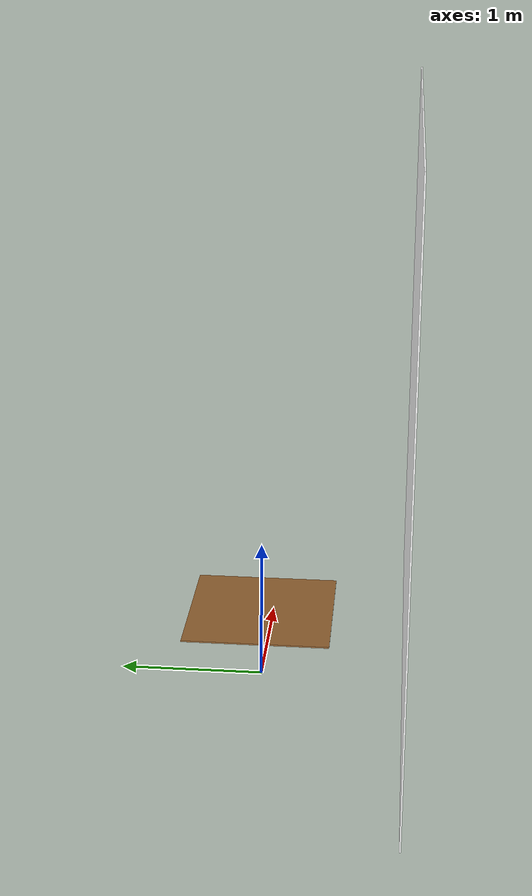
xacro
<?xml version="1.0"?>
<robot xmlns:xacro="http://ros.org/wiki/xacro">

        <link name="world"/>

        <material name="wood">
            <color rgba="0.6 0.4 0.2 1"/>
        </material>

        <material name="white">
            <color rgba="1 1 1 1"/>
        </material>

        <link name="wall">
            <visual>
                <origin xyz="0 0 2.0" rpy="0 0 0"/>
                <geometry>
                    <box size="4 0.01 4"/>
                </geometry>
                <material name="white"/>
            </visual>
            <collision>
                <origin xyz="0 0 2.0" rpy="0 0 0"/>
                <geometry>
                    <box size="4 0.01 4"/>
                </geometry>
            </collision>
        </link>

        <link name="table">
            <visual>
                <material name="wood"/>
                <geometry>
                    <box size="1 1 0.01"/>
                </geometry>
            </visual>
            <collision>
                <geometry>
                    <box size="1 1 0.01"/>
                </geometry>
            </collision>
        </link>

        <joint name="world_to_wall" type="fixed">
            <parent link="world"/>
            <child link="wall"/>
            <origin xyz="0.0 -1.0 0.0" rpy="0.0 0.0 0.0"/>
        </joint>

        <joint name="world_to_table" type="fixed">
            <parent link="world"/>
            <child link="table"/>
            <origin xyz="0.0 0.0 0.5" rpy="0.0 0.0 0.0"/>
        </joint>
</robot>
